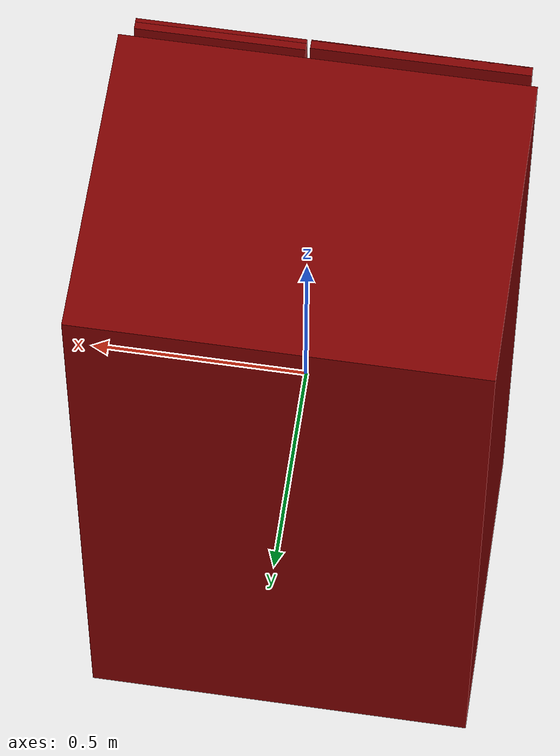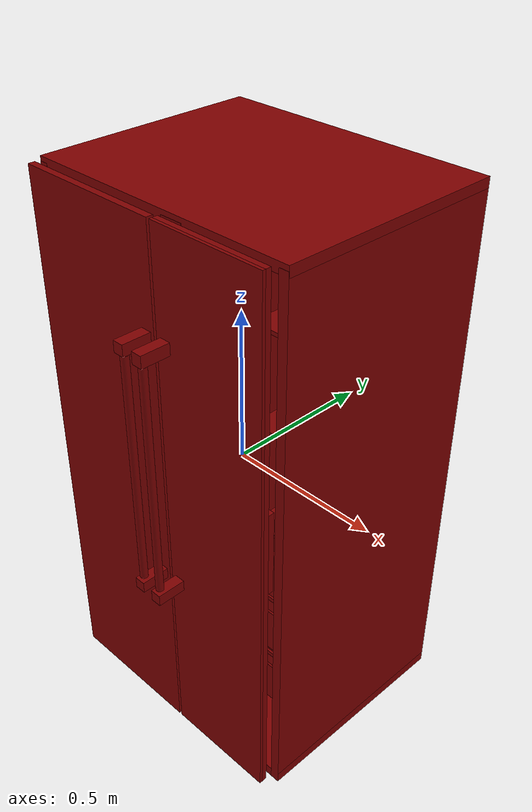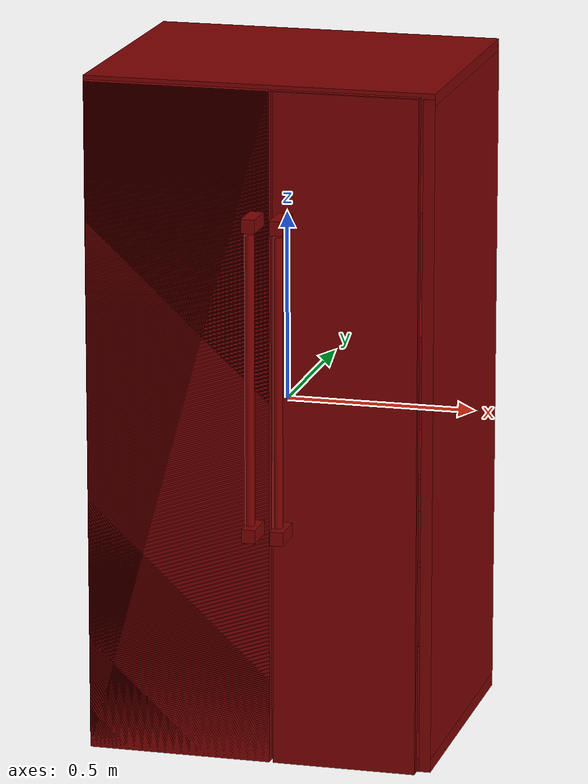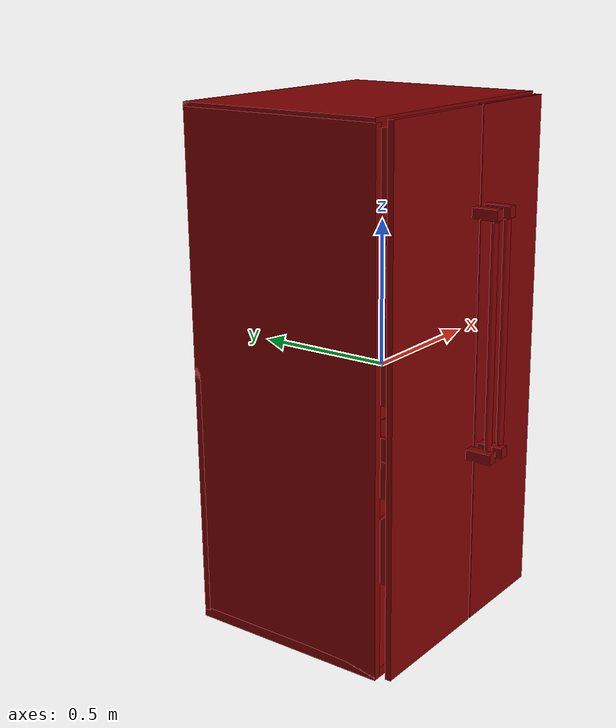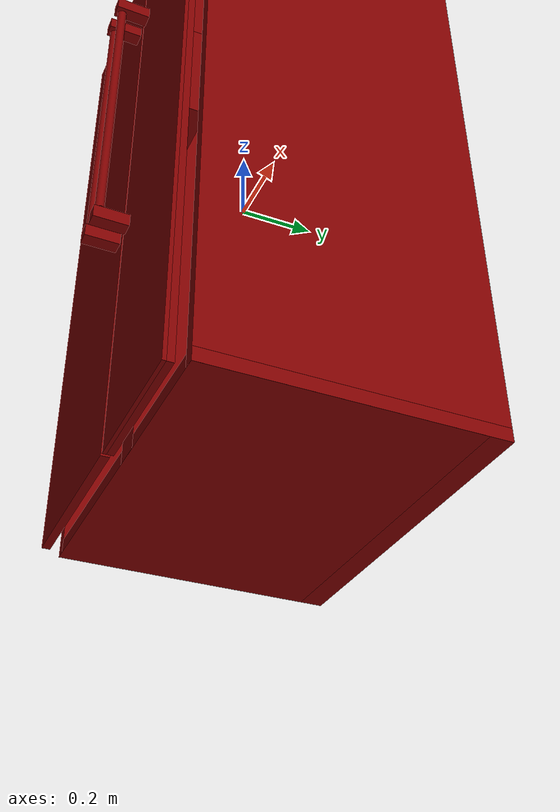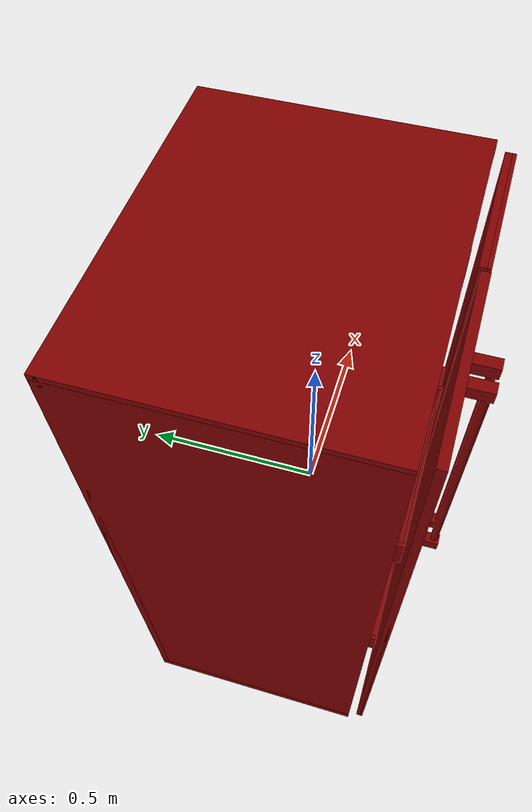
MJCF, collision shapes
<?xml version='1.0' encoding='UTF-8'?>
<mujoco model="model">
  <option timestep="0.002" gravity="0.0 0.0 -9.81"/>
  <compiler angle="radian"/>
  <asset>
    <mesh file="visuals/freezer_door.obj" name="freezer_door_vis"/>
    <mesh file="visuals/freezer_drawer0.obj" name="freezer_drawer0_vis"/>
    <mesh file="visuals/freezer_drawer1.obj" name="freezer_drawer1_vis"/>
    <mesh file="visuals/fridge_door.obj" name="fridge_door_vis"/>
    <mesh file="visuals/fridge_door_Clear.obj" name="fridge_door_Clear_vis"/>
    <mesh file="visuals/Body001.obj" name="Body001_vis"/>
    <mesh file="visuals/Body001_Clear.obj" name="Body001_Clear_vis"/>
    <texture file="visuals/T_BC001.png" name="Body001_material" type="2d"/>
    <material name="Body001_material" rgba="1 1 1 1.0" texture="Body001_material" shininess="0.4472135901451111" specular="1"/>
    <texture file="visuals/T_BC001.png" name="freezer_door_material" type="2d"/>
    <material name="freezer_door_material" rgba="1 1 1 1.0" texture="freezer_door_material" shininess="0.4472135901451111" specular="1"/>
    <texture file="visuals/T_BC001.png" name="freezer_drawer0_material" type="2d"/>
    <material name="freezer_drawer0_material" rgba="1 1 1 1.0" texture="freezer_drawer0_material" shininess="0.4472135901451111" specular="0.3103448502657381"/>
    <texture file="visuals/T_BC001.png" name="freezer_drawer1_material" type="2d"/>
    <material name="freezer_drawer1_material" rgba="1 1 1 1.0" texture="freezer_drawer1_material" shininess="0.4472135901451111" specular="0.3103448502657381"/>
    <texture file="visuals/T_BC001.png" name="fridge_door_material" type="2d"/>
    <material name="fridge_door_material" rgba="1 1 1 1.0" texture="fridge_door_material" shininess="0.4472135901451111" specular="1"/>
    <material name="fridge_door_Clear_material" rgba="0.828483521938324 0.828483521938324 0.828483521938324 0.699999988079071" shininess="0.39411622285842896" specular="0.3103448502657381"/>
    <material name="Body001_Clear_material" rgba="0.828483521938324 0.828483521938324 0.828483521938324 0.699999988079071" shininess="0.39411622285842896" specular="0.3103448502657381"/>
  </asset>
  <default>
    <default class="visual">
      <geom conaffinity="0" contype="0" group="1" type="mesh"/>
    </default>
    <default class="collision">
      <geom group="0" rgba="0.5 0 0 0.5"/>
    </default>
    <default class="spawn">
      <geom group="0" rgba="1 1 1 0.5" contype="0" conaffinity="0"/>
      <site group="0" rgba="1 1 1 0.5"/>
    </default>
    <default class="region">
      <geom group="1" conaffinity="0" contype="0" rgba="0 1 0 0"/>
    </default>
  </default>
  <worldbody>
    <body>
      <body name="object">
        <geom mesh="Body001_vis" type="mesh" solimp="0.998 0.998 0.001" solref="0.001 1" friction="0.95 0.3 0.1" class="visual" material="Body001_material"/>
        <geom class="collision" type="box" pos="0.26825335 0.14537452 0.52756329" size="0.1583569496870041 0.20739924907684326 0.006352466065436602" quat="1.0 0.0 0.0 0.0"/>
        <geom class="collision" type="box" pos="0.26825335 0.14539319 0.19879727" size="0.1583569496870041 0.20741790533065796 0.0060075754299759865" quat="1.0 0.0 0.0 0.0"/>
        <geom class="collision" type="box" pos="0.00000007 0.07124696 0.87991293" size="0.4594999849796295 0.3646564185619354 0.015579096972942352" quat="1.0 0.0 0.0 0.0"/>
        <geom class="collision" type="box" pos="0.07109994 0.07065879 -0.00725337" size="0.0370812825858593 0.3652450144290924 0.8882202506065369" quat="1.0 0.0 0.0 0.0"/>
        <geom class="collision" type="box" pos="-0.00006200 0.04101218 -0.89549206" size="0.4595121145248413 0.33518141508102417 4.427561606235031e-08" quat="1.0 0.0 0.0 0.0"/>
        <geom class="collision" type="box" pos="0.00000001 0.07086730 -0.87782948" size="0.4595000743865967 0.3650367856025696 0.017662016674876213" quat="1.0 0.0 0.0 0.0"/>
        <geom class="collision" type="box" pos="0.44421988 0.07081735 -0.00725732" size="0.015280088409781456 0.3650869131088257 0.8882173895835876" quat="1.0 0.0 0.0 0.0"/>
        <geom class="collision" type="box" pos="0.41765266 0.14903526 0.18643174" size="0.009552940726280212 0.2150000035762787 0.005428791046142578" quat="1.0 0.0 0.0 0.0"/>
        <geom class="collision" type="box" pos="0.41764389 0.13348802 -0.18507709" size="0.009552940726280212 0.19945275783538818 0.005428791046142578" quat="1.0 0.0 0.0 0.0"/>
        <geom class="collision" type="box" pos="0.41764389 0.14903526 -0.35634099" size="0.009552940726280212 0.2150000035762787 0.005428791046142578" quat="1.0 0.0 0.0 0.0"/>
        <geom class="collision" type="box" pos="0.41760706 0.14383061 0.51368310" size="0.009552940726280212 0.20979535579681396 0.005428791046142578" quat="1.0 0.0 0.0 0.0"/>
        <geom class="collision" type="box" pos="0.36396884 0.13381525 -0.62773155" size="0.07021956145763397 0.19978000223636627 0.0053086490370333195" quat="1.0 0.0 0.0 0.0"/>
        <geom class="collision" type="box" pos="0.17792134 0.13329500 -0.62773155" size="0.06877085566520691 0.19925974309444427 0.005308619234710932" quat="1.0 0.0 0.0 0.0"/>
        <geom class="collision" type="box" pos="0.11870343 0.14903526 -0.35634099" size="0.009552940726280212 0.2150000035762787 0.005428791046142578" quat="1.0 0.0 0.0 0.0"/>
        <geom class="collision" type="box" pos="0.11866656 0.14403078 0.51368310" size="0.009552940726280212 0.20999552309513092 0.005428791046142578" quat="1.0 0.0 0.0 0.0"/>
        <geom class="collision" type="box" pos="0.11870343 0.13348802 -0.18507709" size="0.009552940726280212 0.19945275783538818 0.005428791046142578" quat="1.0 0.0 0.0 0.0"/>
        <geom class="collision" type="box" pos="-0.44612671 0.07081803 -0.00725861" size="0.01337326318025589 0.36508822441101074 0.8882200121879578" quat="1.0 0.0 0.0 0.0"/>
        <geom class="collision" type="box" pos="0.11871216 0.14903526 0.18643174" size="0.009552940726280212 0.2150000035762787 0.005428791046142578" quat="1.0 0.0 0.0 0.0"/>
        <geom class="collision" type="box" pos="0.02331202 0.14903526 0.18643174" size="0.009552940726280212 0.2150000035762787 0.005428791046142578" quat="1.0 0.0 0.0 0.0"/>
        <geom class="collision" type="box" pos="0.02331202 0.13348802 -0.18507709" size="0.009552940726280212 0.19945275783538818 0.005428791046142578" quat="1.0 0.0 0.0 0.0"/>
        <geom class="collision" type="box" pos="0.02331202 0.14903526 -0.54353784" size="0.009552940726280212 0.2150000035762787 0.005428791046142578" quat="1.0 0.0 0.0 0.0"/>
        <geom class="collision" type="box" pos="0.02331202 0.13362147 0.50757326" size="0.009552940726280212 0.19958621263504028 0.005428791046142578" quat="1.0 0.0 0.0 0.0"/>
        <geom class="collision" type="box" pos="-0.42616762 0.14903526 -0.54353784" size="0.009552940726280212 0.2150000035762787 0.005428791046142578" quat="1.0 0.0 0.0 0.0"/>
        <geom class="collision" type="box" pos="-0.42616762 0.13348802 -0.18507709" size="0.009552940726280212 0.19945275783538818 0.005428791046142578" quat="1.0 0.0 0.0 0.0"/>
        <geom class="collision" type="box" pos="-0.42616762 0.13346578 0.18643174" size="0.009552940726280212 0.19943052530288696 0.005428791046142578" quat="1.0 0.0 0.0 0.0"/>
        <geom class="collision" type="box" pos="-0.42616762 0.13335458 0.50757326" size="0.009552940726280212 0.19931933283805847 0.005428791046142578" quat="1.0 0.0 0.0 0.0"/>
        <geom class="collision" type="box" pos="0.26825335 0.14557469 -0.17093336" size="0.1583569496870041 0.20759940147399902 0.006224427837878466" quat="1.0 0.0 0.0 0.0"/>
        <geom class="collision" type="box" pos="-0.00002492 0.42431526 0.00000019" size="0.45947501063346863 0.011597595177590847 0.8954831957817078" quat="1.0 0.0 0.0 0.0"/>
        <geom class="collision" type="box" pos="-0.20152099 0.14501499 -0.52559729" size="0.23340408504009247 0.20751787722110748 0.006699406076222658" quat="1.0 0.0 0.0 0.0"/>
        <geom class="collision" type="box" pos="-0.20152099 0.14478651 -0.17385027" size="0.23340408504009247 0.2072894126176834 0.006051766686141491" quat="1.0 0.0 0.0 0.0"/>
        <geom class="collision" type="box" pos="-0.20152099 0.14020018 0.20170614" size="0.23340408504009247 0.21236062049865723 0.0060075754299759865" quat="1.0 0.0 0.0 0.0"/>
        <geom class="collision" type="box" pos="-0.20144091 0.14492050 0.51914246" size="0.23340408504009247 0.20735614001750946 0.0067987944930791855" quat="1.0 0.0 0.0 0.0"/>
        <body name="freezer_door">
          <joint axis="0.0 0.0 1.0" pos="0.43604301 -0.32064514 -0.00846946" limited="true" name="freezer_door_joint" range="0.0 1.5707963267948966" type="hinge" damping="1" frictionloss="1" armature=".01" stiffness="0.05"/>
          <geom mesh="freezer_door_vis" type="mesh" solimp="0.998 0.998 0.001" solref="0.001 1" friction="0.95 0.3 0.1" class="visual" material="freezer_door_material"/>
          <geom class="collision" type="box" pos="0.24010653 -0.32957272 0.00111090" size="0.18864116072654724 0.013158445246517658 0.8892094492912292" quat="1.0 0.0 0.0 0.0"/>
          <geom class="collision" type="box" pos="0.26302867 -0.29267449 0.01537086" size="0.1313161700963974 0.03054771199822426 0.14166441559791565" quat="1.0 0.0 0.0 0.0"/>
          <geom class="collision" type="box" pos="0.08608573 -0.39085899 0.56080683" size="0.01786511205136776 0.04676021635532379 0.018915072083473206" quat="1.0 0.0 0.0 0.0" name="freezer_door_handle_1"/>
          <geom class="collision" type="box" pos="0.08608573 -0.39085899 -0.25131604" size="0.017865093424916267 0.046760112047195435 0.01828717440366745" quat="1.0 0.0 0.0 0.0" name="freezer_door_handle_2"/>
          <geom class="collision" type="cylinder" pos="0.08602540 -0.41952784 0.15553725" size="0.012440330348908901 0.38117796182632446" quat="1.0 0.0 0.0 0.0" name="freezer_door_handle_main"/>
          <geom class="collision" type="box" pos="0.24010653 -0.33828120 0.00111090" size="0.18864288926124573 0.00485289515927434 0.8892166614532471" quat="1.0 0.0 0.0 0.0" name="freezer_door_main"/>
        </body>
        <body name="freezer_drawer0">
          <geom class="region" name="reg_freezer_drawer0" type="box" pos="0.26956082 0.13843671000000002 -0.74334265" size="0.12860301000000002 0.2131848 0.09834752999999996"/>
          <joint axis="0.0 -1.0 0.0" pos="0.26945110 0.13625695 -0.74895279" limited="true" name="freezer_drawer0_joint" range="0.0 0.5" type="slide" damping="1" frictionloss="1" armature=".01" stiffness="0.05"/>
          <geom mesh="freezer_drawer0_vis" type="mesh" solimp="0.998 0.998 0.001" solref="0.001 1" friction="0.95 0.3 0.1" class="visual" material="freezer_drawer0_material"/>
          <geom class="collision" type="box" pos="0.27078249 0.36264073 -0.74901150" size="0.14156587421894073 0.0038112641777843237 0.10914629697799683" quat="1.0 0.0 0.0 0.0"/>
          <geom class="collision" type="box" pos="0.26935704 0.13915091 -0.85549854" size="0.14185942709445953 0.22618547081947327 0.00454176077619195" quat="1.0 0.0 0.0 0.0"/>
          <geom class="collision" type="box" pos="0.40815057 0.13924611 -0.74815719" size="0.0036365410778671503 0.2263440638780594 0.1100011095404625" quat="1.0 0.0 0.0 0.0"/>
          <geom class="collision" type="box" pos="0.13074421 0.13981360 -0.74815719" size="0.0036440046969801188 0.22643408179283142 0.11000137031078339" quat="1.0 0.0 0.0 0.0"/>
          <geom class="collision" type="box" pos="0.27033709 -0.09083720 -0.64539234" size="0.14112193882465363 0.004123501013964415 0.00723676010966301" quat="1.0 0.0 0.0 0.0"/>
          <geom class="collision" type="box" pos="0.26945033 -0.09019924 -0.78297077" size="0.14173756539821625 0.003485538298264146 0.07706958055496216" quat="1.0 0.0 0.0 0.0"/>
          <geom class="collision" type="box" pos="0.15476370 -0.09019923 -0.67473970" size="0.027409683912992477 0.0034855457488447428 0.034046825021505356" quat="1.0 0.0 0.0 0.0"/>
          <geom class="collision" type="box" pos="0.38628276 -0.09019925 -0.67473970" size="0.025263600051403046 0.003485530847683549 0.034046825021505356" quat="1.0 0.0 0.0 0.0"/>
        </body>
        <body name="freezer_drawer1">
          <geom class="region" name="reg_freezer_drawer1" type="box" pos="0.26937585999999997 0.135118445 -0.50436287" size="0.12817031 0.213940455 0.10610396999999996"/>
          <joint axis="0.0 -1.0 0.0" pos="0.26860328 0.13625695 -0.50678612" limited="true" name="freezer_drawer1_joint" range="0.0 0.5" type="slide" damping="1" frictionloss="1" armature=".01" stiffness="0.05"/>
          <geom mesh="freezer_drawer1_vis" type="mesh" solimp="0.998 0.998 0.001" solref="0.001 1" friction="0.95 0.3 0.1" class="visual" material="freezer_drawer1_material"/>
          <geom class="collision" type="box" pos="0.38432365 -0.09019925 -0.42900471" size="0.026479121297597885 0.003485530847683549 0.034046825021505356" quat="1.0 0.0 0.0 0.0"/>
          <geom class="collision" type="box" pos="0.15251960 -0.09019925 -0.42900471" size="0.026479121297597885 0.003485523397102952 0.034046825021505356" quat="1.0 0.0 0.0 0.0"/>
          <geom class="collision" type="box" pos="0.26897948 -0.09019924 -0.54096000" size="0.1429389864206314 0.003485538298264146 0.08079381287097931" quat="1.0 0.0 0.0 0.0"/>
          <geom class="collision" type="box" pos="0.26897948 -0.09024924 -0.39965735" size="0.1429389864206314 0.003535526804625988 0.00723676010966301" quat="1.0 0.0 0.0 0.0"/>
          <geom class="collision" type="box" pos="0.12980260 0.13439973 -0.50568183" size="0.0037377718836069107 0.22153130173683167 0.11326095461845398" quat="1.0 0.0 0.0 0.0"/>
          <geom class="collision" type="box" pos="0.40746601 0.13456654 -0.50568183" size="0.003799821948632598 0.2216975837945938 0.11326070129871368" quat="1.0 0.0 0.0 0.0"/>
          <geom class="collision" type="box" pos="0.26782518 0.13200654 -0.61886702" size="0.14122454822063446 0.22387142479419708 0.0028868159279227257" quat="1.0 0.0 0.0 0.0"/>
          <geom class="collision" type="box" pos="0.26866781 0.36154981 -0.50794203" size="0.14216706156730652 0.004973985254764557 0.11381178349256516" quat="1.0 0.0 0.0 0.0"/>
        </body>
        <body name="fridge_door">
          <joint axis="0.0 0.0 -1.0" pos="-0.43586005 -0.32113854 -0.00847244" limited="true" name="fridge_door_joint" range="0.0 1.5707963267948966" type="hinge" damping="1" frictionloss="1" armature=".01" stiffness="0.05"/>
          <geom mesh="fridge_door_vis" type="mesh" solimp="0.998 0.998 0.001" solref="0.001 1" friction="0.95 0.3 0.1" class="visual" material="fridge_door_material"/>
          <geom class="collision" type="box" pos="-0.20974664 -0.30843122 0.50262059" size="0.2195487767457962 0.0032243402674794197 0.03886110335588455" quat="1.0 0.0 0.0 0.0"/>
          <geom class="collision" type="box" pos="-0.42423118 -0.25745536 0.50262059" size="0.005122859496623278 0.054292209446430206 0.038861196488142014" quat="1.0 0.0 0.0 0.0"/>
          <geom class="collision" type="box" pos="-0.20974664 -0.20637764 0.50262059" size="0.21955111622810364 0.003224362852051854 0.038861289620399475" quat="1.0 0.0 0.0 0.0"/>
          <geom class="collision" type="box" pos="0.00579786 -0.25745536 0.50262059" size="0.005122896283864975 0.05429258570075035 0.03886138275265694" quat="1.0 0.0 0.0 0.0"/>
          <geom class="collision" type="box" pos="-0.20915149 -0.25745536 0.46719284" size="0.22007636725902557 0.054292768239974976 0.0034381297882646322" quat="1.0 0.0 0.0 0.0"/>
          <geom class="collision" type="box" pos="-0.20915149 -0.25745542 -0.14123751" size="0.220078244805336 0.054293155670166016 0.0034381533041596413" quat="1.0 0.0 0.0 0.0"/>
          <geom class="collision" type="box" pos="0.00579786 -0.25745536 -0.10580981" size="0.005122962407767773 0.05429333820939064 0.03886175900697708" quat="1.0 0.0 0.0 0.0"/>
          <geom class="collision" type="box" pos="-0.20974664 -0.20637764 -0.10580981" size="0.21955770254135132 0.0032244313042610884 0.03886185213923454" quat="1.0 0.0 0.0 0.0"/>
          <geom class="collision" type="box" pos="-0.42423118 -0.25745536 -0.10580981" size="0.00512299919500947 0.054293710738420486 0.038861945271492004" quat="1.0 0.0 0.0 0.0"/>
          <geom class="collision" type="box" pos="-0.20060719 -0.33293010 0.00164314" size="0.24239735305309296 0.01077963039278984 0.8894217014312744" quat="1.0 0.0 0.0 0.0"/>
          <geom class="collision" type="box" pos="0.01148505 -0.38893629 0.56124719" size="0.017865315079689026 0.0467604361474514 0.01799345202744007" quat="1.0 0.0 0.0 0.0" name="fridge_door_handle_1"/>
          <geom class="collision" type="box" pos="0.01148505 -0.38893629 -0.25074519" size="0.017865294590592384 0.046760331839323044 0.017993396148085594" quat="1.0 0.0 0.0 0.0" name="fridge_door_handle_2"/>
          <geom class="collision" type="cylinder" pos="0.01142473 -0.41760514 0.15640198" size="0.012440330348908901 0.38117796182632446" quat="1.0 0.0 0.0 0.0" name="fridge_door_handle_main"/>
          <geom class="collision" type="box" pos="-0.20060719 -0.33856980 0.00164314" size="0.24239735305309296 0.005140047054737806 0.8894217014312744" quat="1.0 0.0 0.0 0.0" name="fridge_door_main"/>
          <body name="fridge_door_Clear">
            <geom mesh="fridge_door_Clear_vis" type="mesh" solimp="0.998 0.998 0.001" solref="0.001 1" friction="0.95 0.3 0.1" class="visual" material="fridge_door_Clear_material"/>
            <geom class="collision" type="box" pos="-0.20974664 -0.30843122 0.50262059" size="0.2195487767457962 0.0032243402674794197 0.03886110335588455" quat="1.0 0.0 0.0 0.0"/>
            <geom class="collision" type="box" pos="-0.42423118 -0.25745536 0.50262059" size="0.005122859496623278 0.054292209446430206 0.038861196488142014" quat="1.0 0.0 0.0 0.0"/>
            <geom class="collision" type="box" pos="-0.20974664 -0.20637764 0.50262059" size="0.21955111622810364 0.003224362852051854 0.038861289620399475" quat="1.0 0.0 0.0 0.0"/>
            <geom class="collision" type="box" pos="0.00579786 -0.25745536 0.50262059" size="0.005122896283864975 0.05429258570075035 0.03886138275265694" quat="1.0 0.0 0.0 0.0"/>
            <geom class="collision" type="box" pos="-0.20915149 -0.25745536 0.46719284" size="0.22007636725902557 0.054292768239974976 0.0034381297882646322" quat="1.0 0.0 0.0 0.0"/>
            <geom class="collision" type="box" pos="-0.20915149 -0.25745542 -0.14123751" size="0.220078244805336 0.054293155670166016 0.0034381533041596413" quat="1.0 0.0 0.0 0.0"/>
            <geom class="collision" type="box" pos="0.00579786 -0.25745536 -0.10580981" size="0.005122962407767773 0.05429333820939064 0.03886175900697708" quat="1.0 0.0 0.0 0.0"/>
            <geom class="collision" type="box" pos="-0.20974664 -0.20637764 -0.10580981" size="0.21955770254135132 0.0032244313042610884 0.03886185213923454" quat="1.0 0.0 0.0 0.0"/>
            <geom class="collision" type="box" pos="-0.42423118 -0.25745536 -0.10580981" size="0.00512299919500947 0.054293710738420486 0.038861945271492004" quat="1.0 0.0 0.0 0.0"/>
          </body>
        </body>
        <body name="Body001_Clear">
          <geom mesh="Body001_Clear_vis" type="mesh" solimp="0.998 0.998 0.001" solref="0.001 1" friction="0.95 0.3 0.1" class="visual" material="Body001_Clear_material"/>
          <geom class="collision" type="box" pos="-0.20152099 0.14501499 -0.52559729" size="0.23340408504009247 0.20751787722110748 0.006699406076222658" quat="1.0 0.0 0.0 0.0"/>
          <geom class="collision" type="box" pos="-0.20152099 0.14478651 -0.17385027" size="0.23340408504009247 0.2072894126176834 0.006051766686141491" quat="1.0 0.0 0.0 0.0"/>
          <geom class="collision" type="box" pos="-0.20152099 0.14020018 0.20170614" size="0.23340408504009247 0.21236062049865723 0.0060075754299759865" quat="1.0 0.0 0.0 0.0"/>
          <geom class="collision" type="box" pos="-0.20144091 0.14492050 0.51914246" size="0.23340408504009247 0.20735614001750946 0.0067987944930791855" quat="1.0 0.0 0.0 0.0"/>
        </body>
        <geom class="region" name="reg_fridge_shelf4" type="box" pos="-0.20017965499999998 0.146582115 0.691873985" size="0.222729125 0.194320545 0.158904145"/>
        <geom class="region" name="reg_fridge_shelf3" type="box" pos="-0.199908435 0.14701219000000001 0.35333592999999996" size="0.224583735 0.19498636 0.13842596"/>
        <geom class="region" name="reg_fridge_shelf2" type="box" pos="-0.20092761499999998 0.147064035 0.005933735000000009" size="0.224197915 0.192779265 0.164783625"/>
        <geom class="region" name="reg_fridge_shelf1" type="box" pos="-0.19970886000000002 0.14598032000000002 -0.35382278" size="0.22531111 0.19378913 0.15612216"/>
        <geom class="region" name="reg_fridge_shelf0" type="box" pos="-0.19931853000000002 0.168344105 -0.704547155" size="0.22543757 0.226198555 0.148404135"/>
        <geom class="region" name="reg_freezer_shelf2" type="box" pos="0.27106536000000003 0.14650687 0.695220215" size="0.15028694 0.1943242 0.154725775"/>
        <geom class="region" name="reg_freezer_shelf1" type="box" pos="0.26896889 0.145336075 0.354961545" size="0.15012219 0.196847965 0.144518435"/>
        <geom class="region" name="reg_freezer_shelf0" type="box" pos="0.268541275 0.14423136 0.007109304999999996" size="0.149694565 0.19574325 0.16567874500000002"/>
        <geom class="region" name="reg_main" type="box" pos="1.0500000000024379e-07 0.04609457 3.4500000001269626e-07" size="0.46049995499999996 0.39080442 0.896492375"/>
      </body>
    </body>
  </worldbody>
  <actuator>
    <motor name="freezer_door_joint_actuator" joint="freezer_door_joint" gear="50"/>
    <motor name="freezer_drawer0_joint_actuator" joint="freezer_drawer0_joint" gear="50"/>
    <motor name="freezer_drawer1_joint_actuator" joint="freezer_drawer1_joint" gear="50"/>
    <motor name="fridge_door_joint_actuator" joint="fridge_door_joint" gear="50"/>
  </actuator>
</mujoco>
